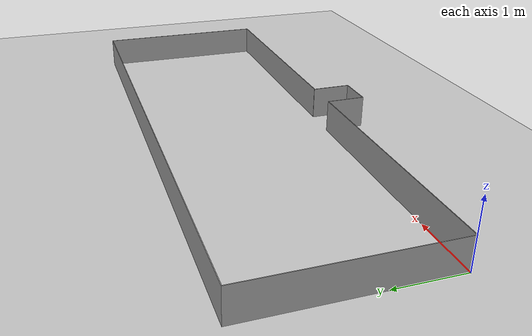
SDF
<sdf version="1.6">
 <world name="default">
  <light name="sun" type="directional">
   <pose>0 0 10 0 -0 0</pose>
   <diffuse>0.8 0.8 0.8 1</diffuse>
   <specular>0.2 0.2 0.2 1</specular>
   <attenuation>
    <range>1000</range>
    <constant>0.9</constant>
    <linear>0.01</linear>
    <quadratic>0.001</quadratic>
   </attenuation>
   <direction>-0.5 0.1 -0.9</direction>
  </light>
  <model name="ground_plane">
   <static>1</static>
   <link name="link">
    <collision name="collision">
     <geometry><plane><normal>0 0 1</normal><size>100 100</size></plane></geometry>
     <surface><friction><ode><mu>100</mu><mu2>50</mu2></ode></friction></surface>
    </collision>
    <visual name="visual">
     <cast_shadows>0</cast_shadows>
     <geometry><plane><normal>0 0 1</normal><size>100 100</size></plane></geometry>
     <material>
      <script><uri>file://media/materials/scripts/gazebo.material</uri><name>Gazebo/Grey</name></script>
     </material>
    </visual>
   </link>
  </model>
  <gravity>0 0 -9.8</gravity>
  <magnetic_field>6e-06 2.3e-05 -4.2e-05</magnetic_field>
  <atmosphere type="adiabatic"/>
  <physics name="default_physics" default="0" type="ode">
   <max_step_size>0.001</max_step_size>
   <real_time_factor>1</real_time_factor>
   <real_time_update_rate>1000</real_time_update_rate>
  </physics>
  <scene><ambient>0.4 0.4 0.4 1</ambient><background>0.7 0.7 0.7 1</background><shadows>1</shadows></scene>
  <spherical_coordinates>
   <surface_model>EARTH_WGS84</surface_model>
   <latitude_deg>0</latitude_deg>
   <longitude_deg>0</longitude_deg>
   <elevation>0</elevation>
   <heading_deg>0</heading_deg>
  </spherical_coordinates>
  <model name="single_parking_space">
   <pose>4.02622 1.12331 0 0 -0 0</pose>
   <link name="Wall_0">
    <collision name="Wall_0_Collision">
     <geometry><box><size>3.86 0.01 0.5</size></box></geometry>
     <pose>0 0 0.25 0 -0 0</pose>
    </collision>
    <visual name="Wall_0_Visual">
     <pose>0 0 0.25 0 -0 0</pose>
     <geometry><box><size>3.86 0.01 0.5</size></box></geometry>
     <material>
      <script><uri>file://media/materials/scripts/gazebo.material</uri><name>Gazebo/Grey</name></script>
      <ambient>1 1 1 1</ambient>
     </material>
     <meta><layer>0</layer></meta>
    </visual>
    <pose>-2.1 -1.125 0 0 -0 0</pose>
   </link>
   <link name="Wall_1">
    <collision name="Wall_1_Collision">
     <geometry><box><size>0.61 0.01 0.5</size></box></geometry>
     <pose>0 0 0.25 0 -0 0</pose>
    </collision>
    <visual name="Wall_1_Visual">
     <pose>0 0 0.25 0 -0 0</pose>
     <geometry><box><size>0.61 0.01 0.5</size></box></geometry>
     <material>
      <script><uri>file://media/materials/scripts/gazebo.material</uri><name>Gazebo/Grey</name></script>
      <ambient>1 1 1 1</ambient>
     </material>
     <meta><layer>0</layer></meta>
    </visual>
    <pose>-0.175 -1.425 0 0 -0 -1.5708</pose>
   </link>
   <link name="Wall_10">
    <collision name="Wall_10_Collision">
     <geometry><box><size>2.86 0.01 0.5</size></box></geometry>
     <pose>0 0 0.25 0 -0 0</pose>
    </collision>
    <visual name="Wall_10_Visual">
     <pose>0 0 0.25 0 -0 0</pose>
     <geometry><box><size>2.86 0.01 0.5</size></box></geometry>
     <material>
      <script><uri>file://media/materials/scripts/gazebo.material</uri><name>Gazebo/Grey</name></script>
      <ambient>1 1 1 1</ambient>
     </material>
     <meta><layer>0</layer></meta>
    </visual>
    <pose>4.025 0.3 0 0 -0 -1.5708</pose>
   </link>
   <link name="Wall_2">
    <collision name="Wall_2_Collision">
     <geometry><box><size>0.56 0.01 0.5</size></box></geometry>
     <pose>0 0 0.25 0 -0 0</pose>
    </collision>
    <visual name="Wall_2_Visual">
     <pose>0 0 0.25 0 -0 0</pose>
     <geometry><box><size>0.56 0.01 0.5</size></box></geometry>
     <material>
      <script><uri>file://media/materials/scripts/gazebo.material</uri><name>Gazebo/Grey</name></script>
      <ambient>1 1 1 1</ambient>
     </material>
     <meta><layer>0</layer></meta>
    </visual>
    <pose>0.1 -1.725 0 0 -0 0</pose>
   </link>
   <link name="Wall_3">
    <collision name="Wall_3_Collision">
     <geometry><box><size>0.61 0.01 0.5</size></box></geometry>
     <pose>0 0 0.25 0 -0 0</pose>
    </collision>
    <visual name="Wall_3_Visual">
     <pose>0 0 0.25 0 -0 0</pose>
     <geometry><box><size>0.61 0.01 0.5</size></box></geometry>
     <material>
      <script><uri>file://media/materials/scripts/gazebo.material</uri><name>Gazebo/Grey</name></script>
      <ambient>1 1 1 1</ambient>
     </material>
     <meta><layer>0</layer></meta>
    </visual>
    <pose>0.375 -1.425 0 0 -0 1.5708</pose>
   </link>
   <link name="Wall_4">
    <collision name="Wall_4_Collision">
     <geometry><box><size>3.66 0.01 0.5</size></box></geometry>
     <pose>0 0 0.25 0 -0 0</pose>
    </collision>
    <visual name="Wall_4_Visual">
     <pose>0 0 0.25 0 -0 0</pose>
     <geometry><box><size>3.66 0.01 0.5</size></box></geometry>
     <material>
      <script><uri>file://media/materials/scripts/gazebo.material</uri><name>Gazebo/Grey</name></script>
      <ambient>1 1 1 1</ambient>
     </material>
     <meta><layer>0</layer></meta>
    </visual>
    <pose>2.2 -1.125 0 0 -0 0</pose>
   </link>
   <link name="Wall_8">
    <collision name="Wall_8_Collision">
     <geometry><box><size>2.86 0.01 0.5</size></box></geometry>
     <pose>0 0 0.25 0 -0 0</pose>
    </collision>
    <visual name="Wall_8_Visual">
     <pose>0 0 0.25 0 -0 0</pose>
     <geometry><box><size>2.86 0.01 0.5</size></box></geometry>
     <material>
      <script><uri>file://media/materials/scripts/gazebo.material</uri><name>Gazebo/Grey</name></script>
      <ambient>1 1 1 1</ambient>
     </material>
     <meta><layer>0</layer></meta>
    </visual>
    <pose>-4.025 0.3 0 0 -0 1.5708</pose>
   </link>
   <link name="Wall_9">
    <collision name="Wall_9_Collision">
     <geometry><box><size>8.06 0.01 0.5</size></box></geometry>
     <pose>0 0 0.25 0 -0 0</pose>
    </collision>
    <visual name="Wall_9_Visual">
     <pose>0 0 0.25 0 -0 0</pose>
     <geometry><box><size>8.06 0.01 0.5</size></box></geometry>
     <material>
      <script><uri>file://media/materials/scripts/gazebo.material</uri><name>Gazebo/Grey</name></script>
      <ambient>1 1 1 1</ambient>
     </material>
     <meta><layer>0</layer></meta>
    </visual>
    <pose>0 1.725 0 0 -0 0</pose>
   </link>
   <static>1</static>
  </model>
 </world>
</sdf>
